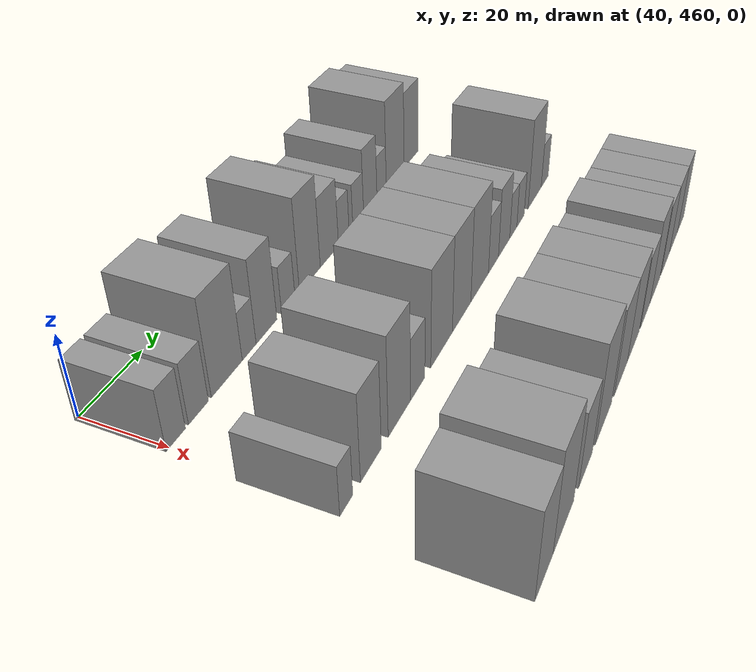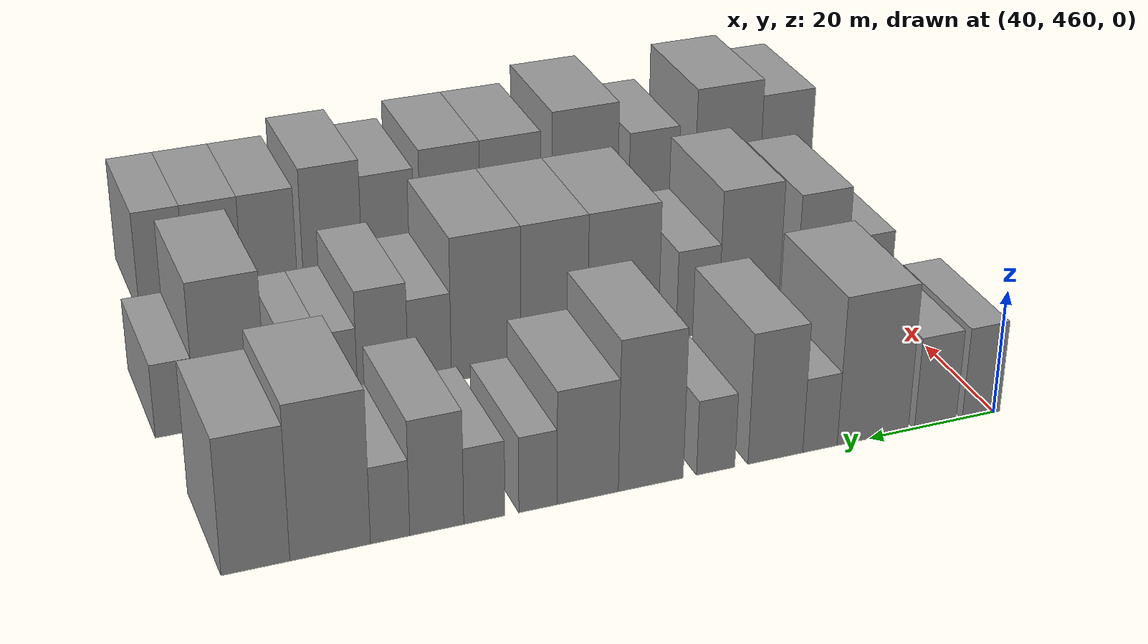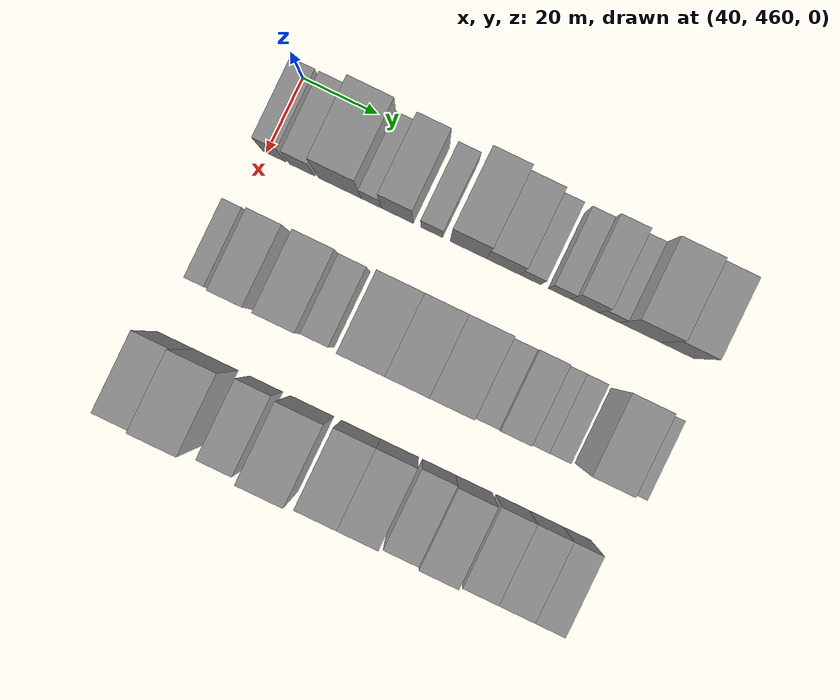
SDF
<sdf version="1.6">
 <world name="default">
  <model name="building_113">
   <static>1</static>
   <pose>50.0000 462.1047 0 0.000000 0.000000 0.000000</pose>
   <link name="link">
    <pose>0 0 7.50 0 0 0</pose>
    <collision name="collision"><geometry><box><size>20.0000 6.1785 15.0000</size></box></geometry></collision>
    <visual name="visual">
     <cast_shadows>0</cast_shadows>
     <geometry><box><size>20.0000 6.1785 15.0000</size></box></geometry>
     <material>
      <script>
       <uri>model://grey_wall/materials/scripts</uri>
       <uri>model://grey_wall/materials/textures</uri>
       <name>vrc/grey_wall</name>
      </script>
     </material>
    </visual>
   </link>
  </model>
  <model name="building_114">
   <static>1</static>
   <pose>50.0000 469.5621 0 0.000000 0.000000 0.000000</pose>
   <link name="link">
    <pose>0 0 7.50 0 0 0</pose>
    <collision name="collision"><geometry><box><size>20.0000 6.7365 15.0000</size></box></geometry></collision>
    <visual name="visual">
     <cast_shadows>0</cast_shadows>
     <geometry><box><size>20.0000 6.7365 15.0000</size></box></geometry>
     <material>
      <script>
       <uri>model://grey_wall/materials/scripts</uri>
       <uri>model://grey_wall/materials/textures</uri>
       <name>vrc/grey_wall</name>
      </script>
     </material>
    </visual>
   </link>
  </model>
  <model name="building_115">
   <static>1</static>
   <pose>50.0000 479.5856 0 0.000000 0.000000 0.000000</pose>
   <link name="link">
    <pose>0 0 12.00 0 0 0</pose>
    <collision name="collision"><geometry><box><size>20.0000 11.3105 24.0000</size></box></geometry></collision>
    <visual name="visual">
     <cast_shadows>0</cast_shadows>
     <geometry><box><size>20.0000 11.3105 24.0000</size></box></geometry>
     <material>
      <script>
       <uri>model://grey_wall/materials/scripts</uri>
       <uri>model://grey_wall/materials/textures</uri>
       <name>vrc/grey_wall</name>
      </script>
     </material>
    </visual>
   </link>
  </model>
  <model name="building_116">
   <static>1</static>
   <pose>50.0000 487.9331 0 0.000000 0.000000 0.000000</pose>
   <link name="link">
    <pose>0 0 6.00 0 0 0</pose>
    <collision name="collision"><geometry><box><size>20.0000 5.3845 12.0000</size></box></geometry></collision>
    <visual name="visual">
     <cast_shadows>0</cast_shadows>
     <geometry><box><size>20.0000 5.3845 12.0000</size></box></geometry>
     <material>
      <script>
       <uri>model://grey_wall/materials/scripts</uri>
       <uri>model://grey_wall/materials/textures</uri>
       <name>vrc/grey_wall</name>
      </script>
     </material>
    </visual>
   </link>
  </model>
  <model name="building_117">
   <static>1</static>
   <pose>50.0000 494.8552 0 0.000000 0.000000 0.000000</pose>
   <link name="link">
    <pose>0 0 10.50 0 0 0</pose>
    <collision name="collision"><geometry><box><size>20.0000 8.4597 21.0000</size></box></geometry></collision>
    <visual name="visual">
     <cast_shadows>0</cast_shadows>
     <geometry><box><size>20.0000 8.4597 21.0000</size></box></geometry>
     <material>
      <script>
       <uri>model://grey_wall/materials/scripts</uri>
       <uri>model://grey_wall/materials/textures</uri>
       <name>vrc/grey_wall</name>
      </script>
     </material>
    </visual>
   </link>
  </model>
  <model name="building_118">
   <static>1</static>
   <pose>50.0000 503.9972 0 0.000000 0.000000 0.000000</pose>
   <link name="link">
    <pose>0 0 6.00 0 0 0</pose>
    <collision name="collision"><geometry><box><size>20.0000 5.8242 12.0000</size></box></geometry></collision>
    <visual name="visual">
     <cast_shadows>0</cast_shadows>
     <geometry><box><size>20.0000 5.8242 12.0000</size></box></geometry>
     <material>
      <script>
       <uri>model://grey_wall/materials/scripts</uri>
       <uri>model://grey_wall/materials/textures</uri>
       <name>vrc/grey_wall</name>
      </script>
     </material>
    </visual>
   </link>
  </model>
  <model name="building_119">
   <static>1</static>
   <pose>50.0000 513.7393 0 0.000000 0.000000 0.000000</pose>
   <link name="link">
    <pose>0 0 12.00 0 0 0</pose>
    <collision name="collision"><geometry><box><size>20.0000 9.6599 24.0000</size></box></geometry></collision>
    <visual name="visual">
     <cast_shadows>0</cast_shadows>
     <geometry><box><size>20.0000 9.6599 24.0000</size></box></geometry>
     <material>
      <script>
       <uri>model://grey_wall/materials/scripts</uri>
       <uri>model://grey_wall/materials/textures</uri>
       <name>vrc/grey_wall</name>
      </script>
     </material>
    </visual>
   </link>
  </model>
  <model name="building_120">
   <static>1</static>
   <pose>50.0000 523.0557 0 0.000000 0.000000 0.000000</pose>
   <link name="link">
    <pose>0 0 9.00 0 0 0</pose>
    <collision name="collision"><geometry><box><size>20.0000 8.9731 18.0000</size></box></geometry></collision>
    <visual name="visual">
     <cast_shadows>0</cast_shadows>
     <geometry><box><size>20.0000 8.9731 18.0000</size></box></geometry>
     <material>
      <script>
       <uri>model://grey_wall/materials/scripts</uri>
       <uri>model://grey_wall/materials/textures</uri>
       <name>vrc/grey_wall</name>
      </script>
     </material>
    </visual>
   </link>
  </model>
  <model name="building_121">
   <static>1</static>
   <pose>50.0000 530.2802 0 0.000000 0.000000 0.000000</pose>
   <link name="link">
    <pose>0 0 6.00 0 0 0</pose>
    <collision name="collision"><geometry><box><size>20.0000 5.4758 12.0000</size></box></geometry></collision>
    <visual name="visual">
     <cast_shadows>0</cast_shadows>
     <geometry><box><size>20.0000 5.4758 12.0000</size></box></geometry>
     <material>
      <script>
       <uri>model://grey_wall/materials/scripts</uri>
       <uri>model://grey_wall/materials/textures</uri>
       <name>vrc/grey_wall</name>
      </script>
     </material>
    </visual>
   </link>
  </model>
  <model name="building_122">
   <static>1</static>
   <pose>50.0000 537.9305 0 0.000000 0.000000 0.000000</pose>
   <link name="link">
    <pose>0 0 6.00 0 0 0</pose>
    <collision name="collision"><geometry><box><size>20.0000 5.8248 12.0000</size></box></geometry></collision>
    <visual name="visual">
     <cast_shadows>0</cast_shadows>
     <geometry><box><size>20.0000 5.8248 12.0000</size></box></geometry>
     <material>
      <script>
       <uri>model://grey_wall/materials/scripts</uri>
       <uri>model://grey_wall/materials/textures</uri>
       <name>vrc/grey_wall</name>
      </script>
     </material>
    </visual>
   </link>
  </model>
  <model name="building_123">
   <static>1</static>
   <pose>50.0000 544.6161 0 0.000000 0.000000 0.000000</pose>
   <link name="link">
    <pose>0 0 9.00 0 0 0</pose>
    <collision name="collision"><geometry><box><size>20.0000 7.5464 18.0000</size></box></geometry></collision>
    <visual name="visual">
     <cast_shadows>0</cast_shadows>
     <geometry><box><size>20.0000 7.5464 18.0000</size></box></geometry>
     <material>
      <script>
       <uri>model://grey_wall/materials/scripts</uri>
       <uri>model://grey_wall/materials/textures</uri>
       <name>vrc/grey_wall</name>
      </script>
     </material>
    </visual>
   </link>
  </model>
  <model name="building_124">
   <static>1</static>
   <pose>50.0000 551.1045 0 0.000000 0.000000 0.000000</pose>
   <link name="link">
    <pose>0 0 6.00 0 0 0</pose>
    <collision name="collision"><geometry><box><size>20.0000 5.4303 12.0000</size></box></geometry></collision>
    <visual name="visual">
     <cast_shadows>0</cast_shadows>
     <geometry><box><size>20.0000 5.4303 12.0000</size></box></geometry>
     <material>
      <script>
       <uri>model://grey_wall/materials/scripts</uri>
       <uri>model://grey_wall/materials/textures</uri>
       <name>vrc/grey_wall</name>
      </script>
     </material>
    </visual>
   </link>
  </model>
  <model name="building_125">
   <static>1</static>
   <pose>50.0000 559.2895 0 0.000000 0.000000 0.000000</pose>
   <link name="link">
    <pose>0 0 12.00 0 0 0</pose>
    <collision name="collision"><geometry><box><size>20.0000 10.9396 24.0000</size></box></geometry></collision>
    <visual name="visual">
     <cast_shadows>0</cast_shadows>
     <geometry><box><size>20.0000 10.9396 24.0000</size></box></geometry>
     <material>
      <script>
       <uri>model://grey_wall/materials/scripts</uri>
       <uri>model://grey_wall/materials/textures</uri>
       <name>vrc/grey_wall</name>
      </script>
     </material>
    </visual>
   </link>
  </model>
  <model name="building_126">
   <static>1</static>
   <pose>50.0000 569.3454 0 0.000000 0.000000 0.000000</pose>
   <link name="link">
    <pose>0 0 10.50 0 0 0</pose>
    <collision name="collision"><geometry><box><size>20.0000 9.1723 21.0000</size></box></geometry></collision>
    <visual name="visual">
     <cast_shadows>0</cast_shadows>
     <geometry><box><size>20.0000 9.1723 21.0000</size></box></geometry>
     <material>
      <script>
       <uri>model://grey_wall/materials/scripts</uri>
       <uri>model://grey_wall/materials/textures</uri>
       <name>vrc/grey_wall</name>
      </script>
     </material>
    </visual>
   </link>
  </model>
  <model name="building_234">
   <static>1</static>
   <pose>85.0000 460.6152 0 0.000000 0.000000 0.000000</pose>
   <link name="link">
    <pose>0 0 6.00 0 0 0</pose>
    <collision name="collision"><geometry><box><size>20.0000 4.9800 12.0000</size></box></geometry></collision>
    <visual name="visual">
     <cast_shadows>0</cast_shadows>
     <geometry><box><size>20.0000 4.9800 12.0000</size></box></geometry>
     <material>
      <script>
       <uri>model://grey_wall/materials/scripts</uri>
       <uri>model://grey_wall/materials/textures</uri>
       <name>vrc/grey_wall</name>
      </script>
     </material>
    </visual>
   </link>
  </model>
  <model name="building_235">
   <static>1</static>
   <pose>85.0000 470.4084 0 0.000000 0.000000 0.000000</pose>
   <link name="link">
    <pose>0 0 10.50 0 0 0</pose>
    <collision name="collision"><geometry><box><size>20.0000 8.6065 21.0000</size></box></geometry></collision>
    <visual name="visual">
     <cast_shadows>0</cast_shadows>
     <geometry><box><size>20.0000 8.6065 21.0000</size></box></geometry>
     <material>
      <script>
       <uri>model://grey_wall/materials/scripts</uri>
       <uri>model://grey_wall/materials/textures</uri>
       <name>vrc/grey_wall</name>
      </script>
     </material>
    </visual>
   </link>
  </model>
  <model name="building_236">
   <static>1</static>
   <pose>85.0000 482.7807 0 0.000000 0.000000 0.000000</pose>
   <link name="link">
    <pose>0 0 12.00 0 0 0</pose>
    <collision name="collision"><geometry><box><size>20.0000 10.1380 24.0000</size></box></geometry></collision>
    <visual name="visual">
     <cast_shadows>0</cast_shadows>
     <geometry><box><size>20.0000 10.1380 24.0000</size></box></geometry>
     <material>
      <script>
       <uri>model://grey_wall/materials/scripts</uri>
       <uri>model://grey_wall/materials/textures</uri>
       <name>vrc/grey_wall</name>
      </script>
     </material>
    </visual>
   </link>
  </model>
  <model name="building_237">
   <static>1</static>
   <pose>85.0000 491.3595 0 0.000000 0.000000 0.000000</pose>
   <link name="link">
    <pose>0 0 7.50 0 0 0</pose>
    <collision name="collision"><geometry><box><size>20.0000 7.0197 15.0000</size></box></geometry></collision>
    <visual name="visual">
     <cast_shadows>0</cast_shadows>
     <geometry><box><size>20.0000 7.0197 15.0000</size></box></geometry>
     <material>
      <script>
       <uri>model://grey_wall/materials/scripts</uri>
       <uri>model://grey_wall/materials/textures</uri>
       <name>vrc/grey_wall</name>
      </script>
     </material>
    </visual>
   </link>
  </model>
  <model name="building_238">
   <static>1</static>
   <pose>85.0000 503.6456 0 0.000000 0.000000 0.000000</pose>
   <link name="link">
    <pose>0 0 12.00 0 0 0</pose>
    <collision name="collision"><geometry><box><size>20.0000 11.5526 24.0000</size></box></geometry></collision>
    <visual name="visual">
     <cast_shadows>0</cast_shadows>
     <geometry><box><size>20.0000 11.5526 24.0000</size></box></geometry>
     <material>
      <script>
       <uri>model://grey_wall/materials/scripts</uri>
       <uri>model://grey_wall/materials/textures</uri>
       <name>vrc/grey_wall</name>
      </script>
     </material>
    </visual>
   </link>
  </model>
  <model name="building_239">
   <static>1</static>
   <pose>85.0000 514.7600 0 0.000000 0.000000 0.000000</pose>
   <link name="link">
    <pose>0 0 12.00 0 0 0</pose>
    <collision name="collision"><geometry><box><size>20.0000 10.6761 24.0000</size></box></geometry></collision>
    <visual name="visual">
     <cast_shadows>0</cast_shadows>
     <geometry><box><size>20.0000 10.6761 24.0000</size></box></geometry>
     <material>
      <script>
       <uri>model://grey_wall/materials/scripts</uri>
       <uri>model://grey_wall/materials/textures</uri>
       <name>vrc/grey_wall</name>
      </script>
     </material>
    </visual>
   </link>
  </model>
  <model name="building_240">
   <static>1</static>
   <pose>85.0000 525.5397 0 0.000000 0.000000 0.000000</pose>
   <link name="link">
    <pose>0 0 12.00 0 0 0</pose>
    <collision name="collision"><geometry><box><size>20.0000 10.8834 24.0000</size></box></geometry></collision>
    <visual name="visual">
     <cast_shadows>0</cast_shadows>
     <geometry><box><size>20.0000 10.8834 24.0000</size></box></geometry>
     <material>
      <script>
       <uri>model://grey_wall/materials/scripts</uri>
       <uri>model://grey_wall/materials/textures</uri>
       <name>vrc/grey_wall</name>
      </script>
     </material>
    </visual>
   </link>
  </model>
  <model name="building_241">
   <static>1</static>
   <pose>85.0000 534.3045 0 0.000000 0.000000 0.000000</pose>
   <link name="link">
    <pose>0 0 7.50 0 0 0</pose>
    <collision name="collision"><geometry><box><size>20.0000 6.6462 15.0000</size></box></geometry></collision>
    <visual name="visual">
     <cast_shadows>0</cast_shadows>
     <geometry><box><size>20.0000 6.6462 15.0000</size></box></geometry>
     <material>
      <script>
       <uri>model://grey_wall/materials/scripts</uri>
       <uri>model://grey_wall/materials/textures</uri>
       <name>vrc/grey_wall</name>
      </script>
     </material>
    </visual>
   </link>
  </model>
  <model name="building_242">
   <static>1</static>
   <pose>85.0000 541.4974 0 0.000000 0.000000 0.000000</pose>
   <link name="link">
    <pose>0 0 9.00 0 0 0</pose>
    <collision name="collision"><geometry><box><size>20.0000 7.7395 18.0000</size></box></geometry></collision>
    <visual name="visual">
     <cast_shadows>0</cast_shadows>
     <geometry><box><size>20.0000 7.7395 18.0000</size></box></geometry>
     <material>
      <script>
       <uri>model://grey_wall/materials/scripts</uri>
       <uri>model://grey_wall/materials/textures</uri>
       <name>vrc/grey_wall</name>
      </script>
     </material>
    </visual>
   </link>
  </model>
  <model name="building_243">
   <static>1</static>
   <pose>85.0000 547.9407 0 0.000000 0.000000 0.000000</pose>
   <link name="link">
    <pose>0 0 6.00 0 0 0</pose>
    <collision name="collision"><geometry><box><size>20.0000 5.1470 12.0000</size></box></geometry></collision>
    <visual name="visual">
     <cast_shadows>0</cast_shadows>
     <geometry><box><size>20.0000 5.1470 12.0000</size></box></geometry>
     <material>
      <script>
       <uri>model://grey_wall/materials/scripts</uri>
       <uri>model://grey_wall/materials/textures</uri>
       <name>vrc/grey_wall</name>
      </script>
     </material>
    </visual>
   </link>
  </model>
  <model name="building_244">
   <static>1</static>
   <pose>85.0000 553.2492 0 0.000000 0.000000 0.000000</pose>
   <link name="link">
    <pose>0 0 6.00 0 0 0</pose>
    <collision name="collision"><geometry><box><size>20.0000 5.4701 12.0000</size></box></geometry></collision>
    <visual name="visual">
     <cast_shadows>0</cast_shadows>
     <geometry><box><size>20.0000 5.4701 12.0000</size></box></geometry>
     <material>
      <script>
       <uri>model://grey_wall/materials/scripts</uri>
       <uri>model://grey_wall/materials/textures</uri>
       <name>vrc/grey_wall</name>
      </script>
     </material>
    </visual>
   </link>
  </model>
  <model name="building_245">
   <static>1</static>
   <pose>85.0000 564.1860 0 0.000000 0.000000 0.000000</pose>
   <link name="link">
    <pose>0 0 12.00 0 0 0</pose>
    <collision name="collision"><geometry><box><size>20.0000 10.4035 24.0000</size></box></geometry></collision>
    <visual name="visual">
     <cast_shadows>0</cast_shadows>
     <geometry><box><size>20.0000 10.4035 24.0000</size></box></geometry>
     <material>
      <script>
       <uri>model://grey_wall/materials/scripts</uri>
       <uri>model://grey_wall/materials/textures</uri>
       <name>vrc/grey_wall</name>
      </script>
     </material>
    </visual>
   </link>
  </model>
  <model name="building_246">
   <static>1</static>
   <pose>85.0000 572.3270 0 0.000000 0.000000 0.000000</pose>
   <link name="link">
    <pose>0 0 6.00 0 0 0</pose>
    <collision name="collision"><geometry><box><size>20.0000 5.8785 12.0000</size></box></geometry></collision>
    <visual name="visual">
     <cast_shadows>0</cast_shadows>
     <geometry><box><size>20.0000 5.8785 12.0000</size></box></geometry>
     <material>
      <script>
       <uri>model://grey_wall/materials/scripts</uri>
       <uri>model://grey_wall/materials/textures</uri>
       <name>vrc/grey_wall</name>
      </script>
     </material>
    </visual>
   </link>
  </model>
  <model name="building_362">
   <static>1</static>
   <pose>120.0000 459.8407 0 0.000000 0.000000 0.000000</pose>
   <link name="link">
    <pose>0 0 10.50 0 0 0</pose>
    <collision name="collision"><geometry><box><size>20.0000 9.5296 21.0000</size></box></geometry></collision>
    <visual name="visual">
     <cast_shadows>0</cast_shadows>
     <geometry><box><size>20.0000 9.5296 21.0000</size></box></geometry>
     <material>
      <script>
       <uri>model://grey_wall/materials/scripts</uri>
       <uri>model://grey_wall/materials/textures</uri>
       <name>vrc/grey_wall</name>
      </script>
     </material>
    </visual>
   </link>
  </model>
  <model name="building_363">
   <static>1</static>
   <pose>120.0000 470.5890 0 0.000000 0.000000 0.000000</pose>
   <link name="link">
    <pose>0 0 12.00 0 0 0</pose>
    <collision name="collision"><geometry><box><size>20.0000 11.9671 24.0000</size></box></geometry></collision>
    <visual name="visual">
     <cast_shadows>0</cast_shadows>
     <geometry><box><size>20.0000 11.9671 24.0000</size></box></geometry>
     <material>
      <script>
       <uri>model://grey_wall/materials/scripts</uri>
       <uri>model://grey_wall/materials/textures</uri>
       <name>vrc/grey_wall</name>
      </script>
     </material>
    </visual>
   </link>
  </model>
  <model name="building_364">
   <static>1</static>
   <pose>120.0000 484.0061 0 0.000000 0.000000 0.000000</pose>
   <link name="link">
    <pose>0 0 9.00 0 0 0</pose>
    <collision name="collision"><geometry><box><size>20.0000 8.8670 18.0000</size></box></geometry></collision>
    <visual name="visual">
     <cast_shadows>0</cast_shadows>
     <geometry><box><size>20.0000 8.8670 18.0000</size></box></geometry>
     <material>
      <script>
       <uri>model://grey_wall/materials/scripts</uri>
       <uri>model://grey_wall/materials/textures</uri>
       <name>vrc/grey_wall</name>
      </script>
     </material>
    </visual>
   </link>
  </model>
  <model name="building_365">
   <static>1</static>
   <pose>120.0000 496.2478 0 0.000000 0.000000 0.000000</pose>
   <link name="link">
    <pose>0 0 12.00 0 0 0</pose>
    <collision name="collision"><geometry><box><size>20.0000 11.6165 24.0000</size></box></geometry></collision>
    <visual name="visual">
     <cast_shadows>0</cast_shadows>
     <geometry><box><size>20.0000 11.6165 24.0000</size></box></geometry>
     <material>
      <script>
       <uri>model://grey_wall/materials/scripts</uri>
       <uri>model://grey_wall/materials/textures</uri>
       <name>vrc/grey_wall</name>
      </script>
     </material>
    </visual>
   </link>
  </model>
  <model name="building_366">
   <static>1</static>
   <pose>120.0000 509.2590 0 0.000000 0.000000 0.000000</pose>
   <link name="link">
    <pose>0 0 10.50 0 0 0</pose>
    <collision name="collision"><geometry><box><size>20.0000 10.4059 21.0000</size></box></geometry></collision>
    <visual name="visual">
     <cast_shadows>0</cast_shadows>
     <geometry><box><size>20.0000 10.4059 21.0000</size></box></geometry>
     <material>
      <script>
       <uri>model://grey_wall/materials/scripts</uri>
       <uri>model://grey_wall/materials/textures</uri>
       <name>vrc/grey_wall</name>
      </script>
     </material>
    </visual>
   </link>
  </model>
  <model name="building_367">
   <static>1</static>
   <pose>120.0000 519.5339 0 0.000000 0.000000 0.000000</pose>
   <link name="link">
    <pose>0 0 10.50 0 0 0</pose>
    <collision name="collision"><geometry><box><size>20.0000 10.1439 21.0000</size></box></geometry></collision>
    <visual name="visual">
     <cast_shadows>0</cast_shadows>
     <geometry><box><size>20.0000 10.1439 21.0000</size></box></geometry>
     <material>
      <script>
       <uri>model://grey_wall/materials/scripts</uri>
       <uri>model://grey_wall/materials/textures</uri>
       <name>vrc/grey_wall</name>
      </script>
     </material>
    </visual>
   </link>
  </model>
  <model name="building_368">
   <static>1</static>
   <pose>120.0000 530.0169 0 0.000000 0.000000 0.000000</pose>
   <link name="link">
    <pose>0 0 9.00 0 0 0</pose>
    <collision name="collision"><geometry><box><size>20.0000 8.8221 18.0000</size></box></geometry></collision>
    <visual name="visual">
     <cast_shadows>0</cast_shadows>
     <geometry><box><size>20.0000 8.8221 18.0000</size></box></geometry>
     <material>
      <script>
       <uri>model://grey_wall/materials/scripts</uri>
       <uri>model://grey_wall/materials/textures</uri>
       <name>vrc/grey_wall</name>
      </script>
     </material>
    </visual>
   </link>
  </model>
  <model name="building_369">
   <static>1</static>
   <pose>120.0000 539.2933 0 0.000000 0.000000 0.000000</pose>
   <link name="link">
    <pose>0 0 10.50 0 0 0</pose>
    <collision name="collision"><geometry><box><size>20.0000 9.7307 21.0000</size></box></geometry></collision>
    <visual name="visual">
     <cast_shadows>0</cast_shadows>
     <geometry><box><size>20.0000 9.7307 21.0000</size></box></geometry>
     <material>
      <script>
       <uri>model://grey_wall/materials/scripts</uri>
       <uri>model://grey_wall/materials/textures</uri>
       <name>vrc/grey_wall</name>
      </script>
     </material>
    </visual>
   </link>
  </model>
  <model name="building_370">
   <static>1</static>
   <pose>120.0000 549.6081 0 0.000000 0.000000 0.000000</pose>
   <link name="link">
    <pose>0 0 9.00 0 0 0</pose>
    <collision name="collision"><geometry><box><size>20.0000 8.8989 18.0000</size></box></geometry></collision>
    <visual name="visual">
     <cast_shadows>0</cast_shadows>
     <geometry><box><size>20.0000 8.8989 18.0000</size></box></geometry>
     <material>
      <script>
       <uri>model://grey_wall/materials/scripts</uri>
       <uri>model://grey_wall/materials/textures</uri>
       <name>vrc/grey_wall</name>
      </script>
     </material>
    </visual>
   </link>
  </model>
  <model name="building_371">
   <static>1</static>
   <pose>120.0000 558.5495 0 0.000000 0.000000 0.000000</pose>
   <link name="link">
    <pose>0 0 9.00 0 0 0</pose>
    <collision name="collision"><geometry><box><size>20.0000 8.9840 18.0000</size></box></geometry></collision>
    <visual name="visual">
     <cast_shadows>0</cast_shadows>
     <geometry><box><size>20.0000 8.9840 18.0000</size></box></geometry>
     <material>
      <script>
       <uri>model://grey_wall/materials/scripts</uri>
       <uri>model://grey_wall/materials/textures</uri>
       <name>vrc/grey_wall</name>
      </script>
     </material>
    </visual>
   </link>
  </model>
  <model name="building_372">
   <static>1</static>
   <pose>120.0000 566.7502 0 0.000000 0.000000 0.000000</pose>
   <link name="link">
    <pose>0 0 9.00 0 0 0</pose>
    <collision name="collision"><geometry><box><size>20.0000 7.4173 18.0000</size></box></geometry></collision>
    <visual name="visual">
     <cast_shadows>0</cast_shadows>
     <geometry><box><size>20.0000 7.4173 18.0000</size></box></geometry>
     <material>
      <script>
       <uri>model://grey_wall/materials/scripts</uri>
       <uri>model://grey_wall/materials/textures</uri>
       <name>vrc/grey_wall</name>
      </script>
     </material>
    </visual>
   </link>
  </model>
 </world>
</sdf>
